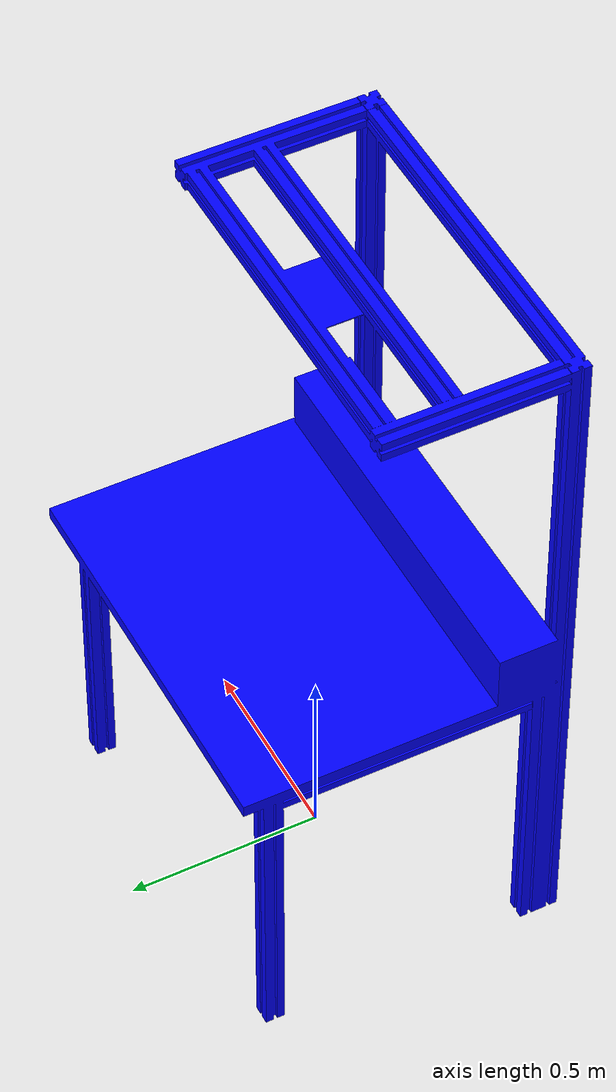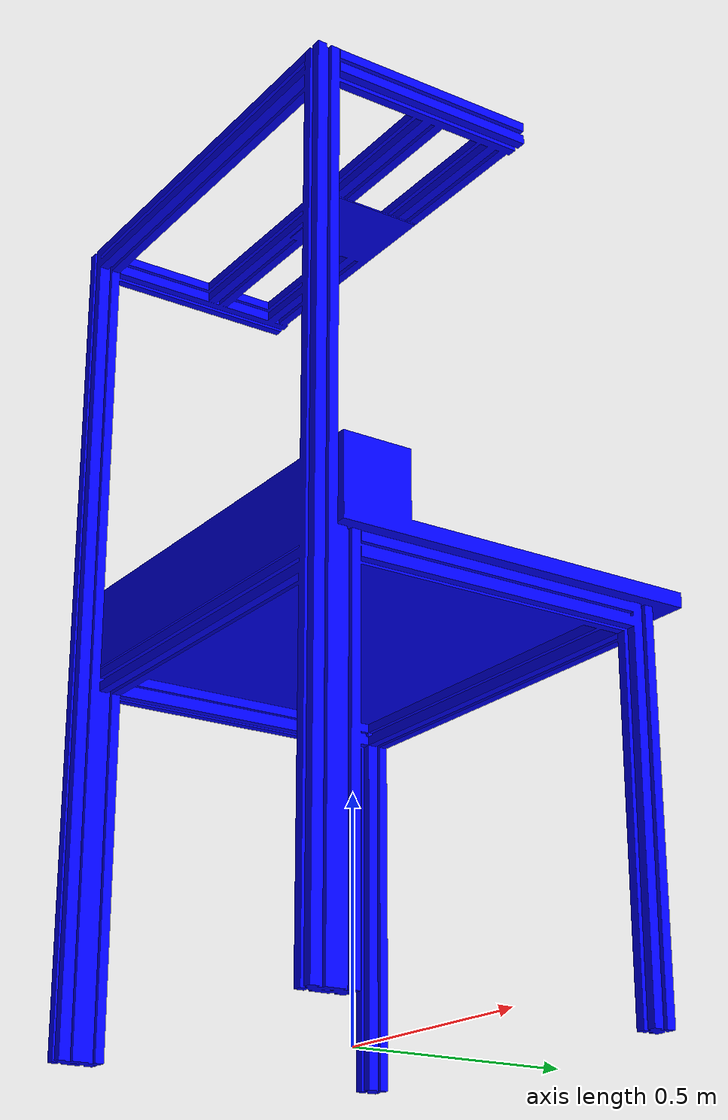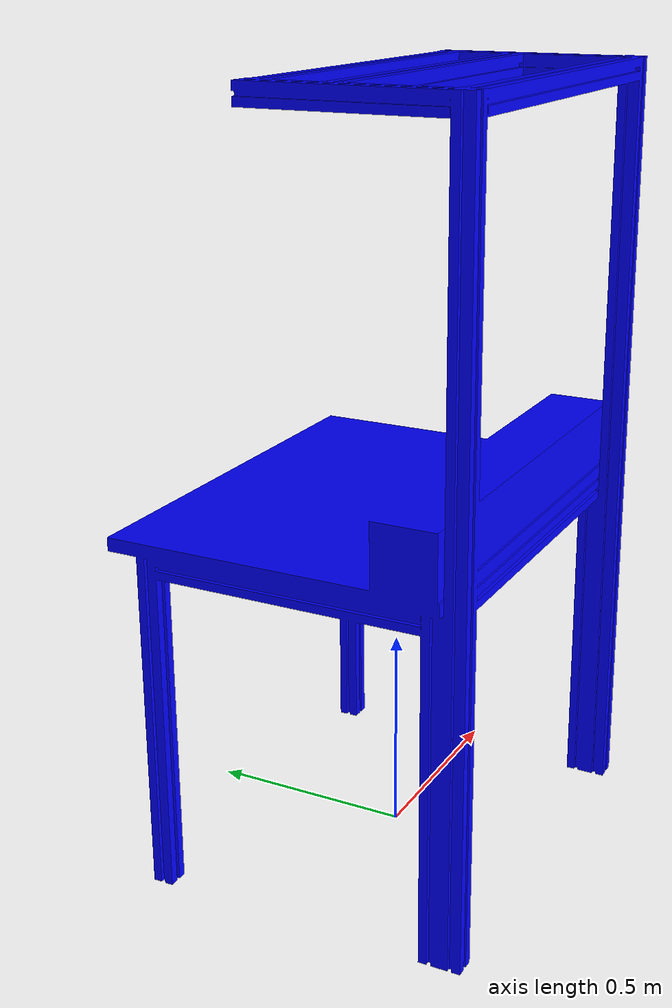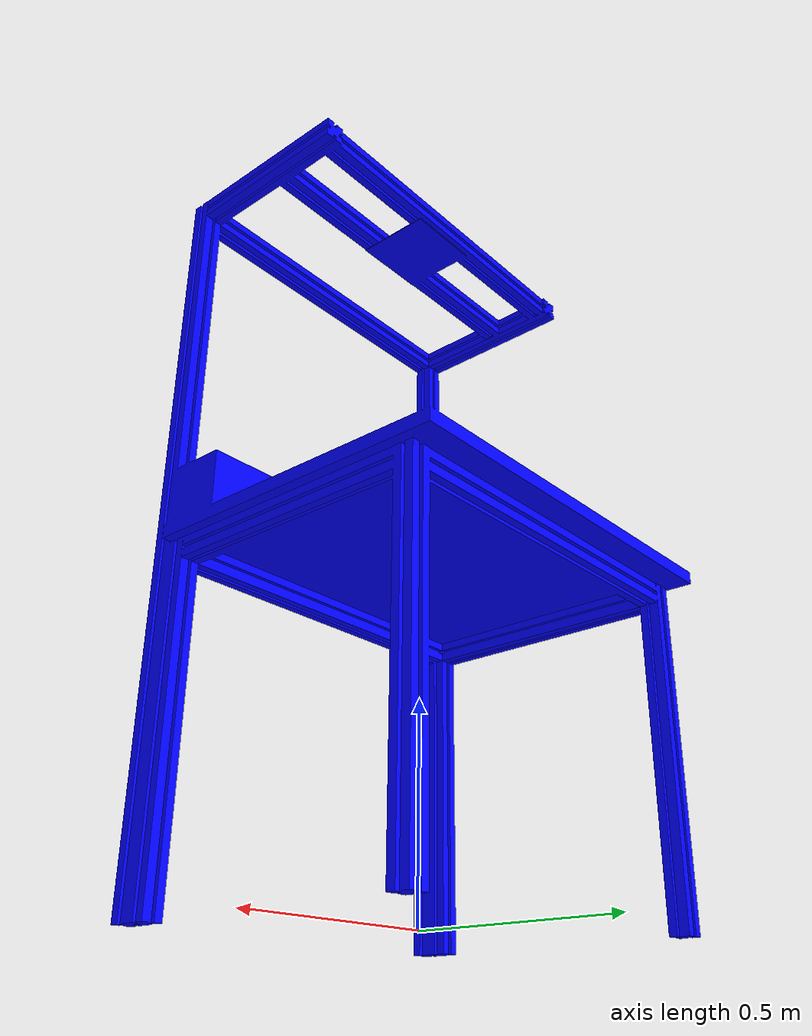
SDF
<?xml version='1.0'?>
<sdf version='1.6'>
  <model name='table'>
    <static>true</static>
    <link name='table_link'>
      <pose>-0.5 -0.35 0 0 -0 0</pose>
      <inertial>
        <mass>80</mass>
      </inertial>
      <collision name='collision'>
        <geometry>
          <mesh>
            <uri>meshes/mesh.stl</uri>
          </mesh>
        </geometry>
      </collision>
      <visual name='visual'>
        <geometry>
          <mesh>
            <uri>meshes/mesh.stl</uri>
          </mesh>
        </geometry>
        <material>
		<ambient>0.0 0.0 1.0 1</ambient>
		<diffuse>0.0 0.0 1.0 1</diffuse>
		<specular>0.0 0.0 1.0 1</specular>
        </material>
      </visual>
    </link>
  </model>
</sdf>
